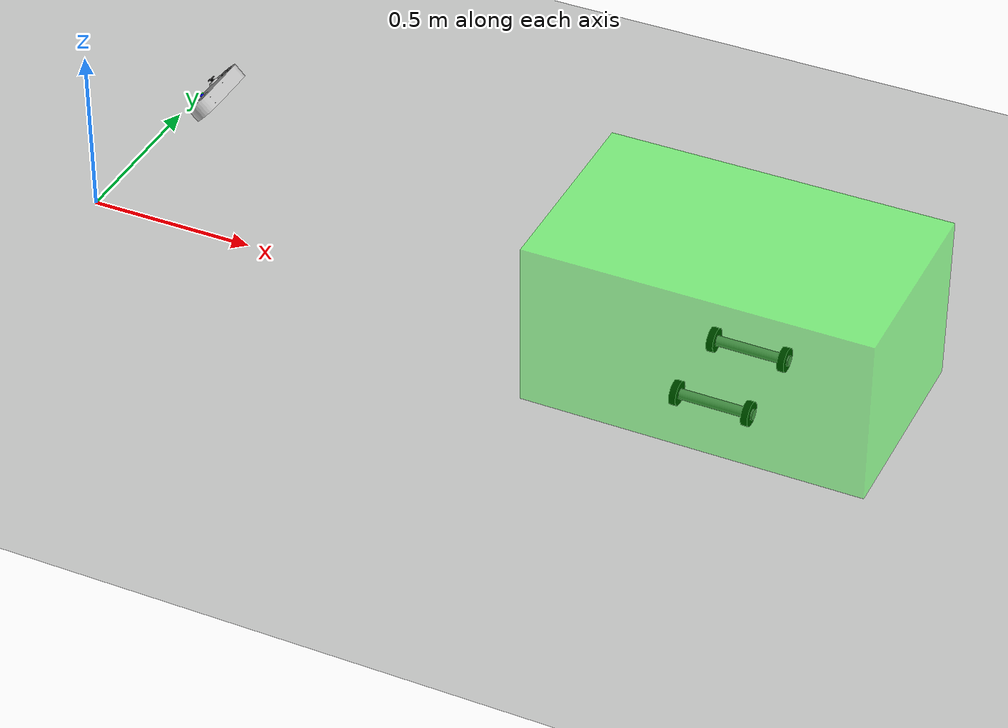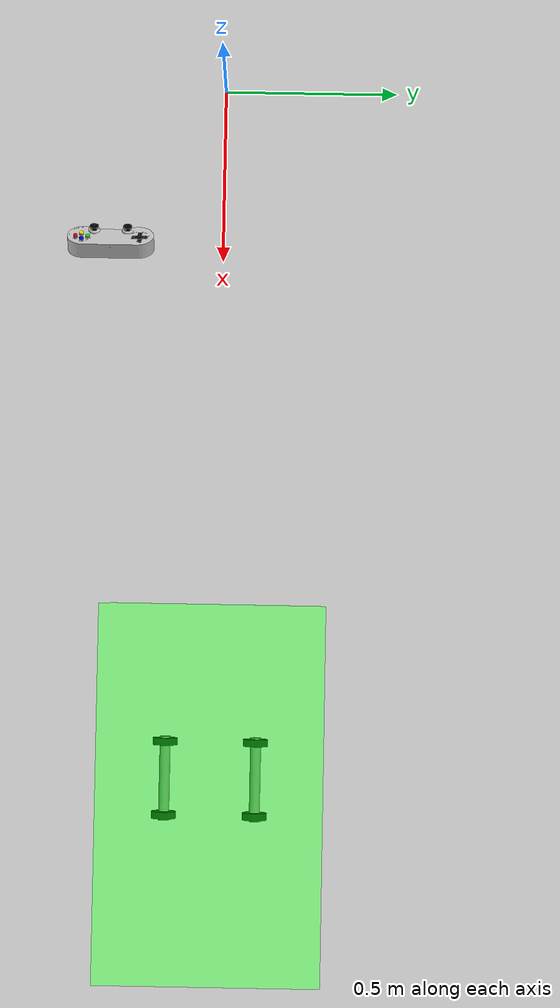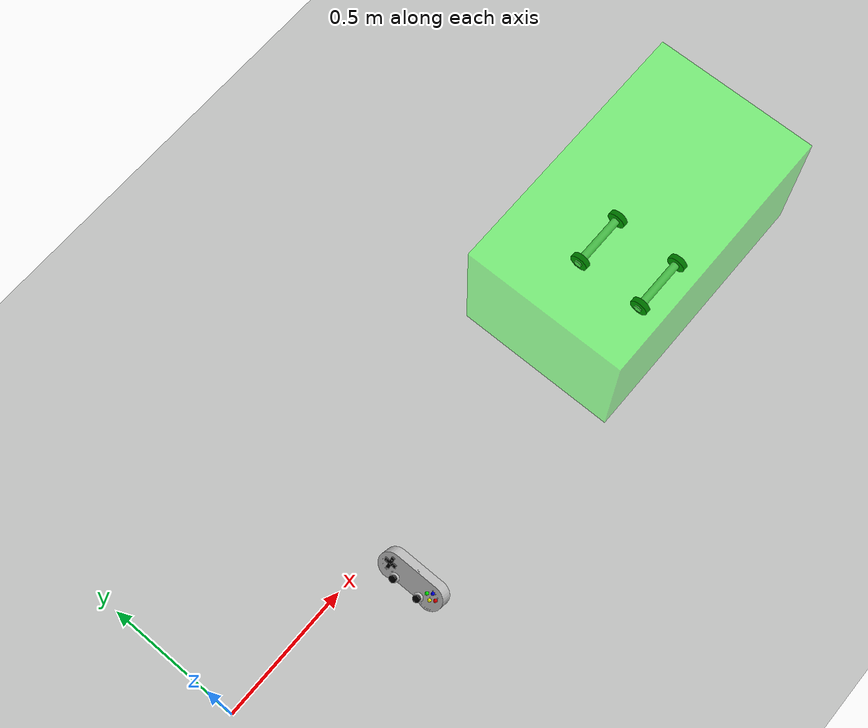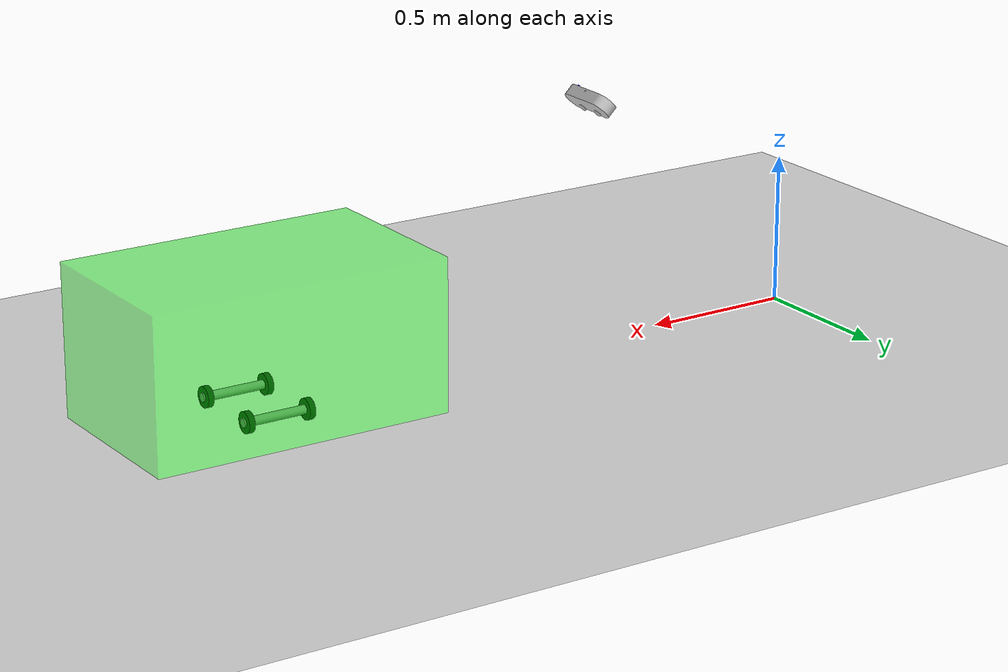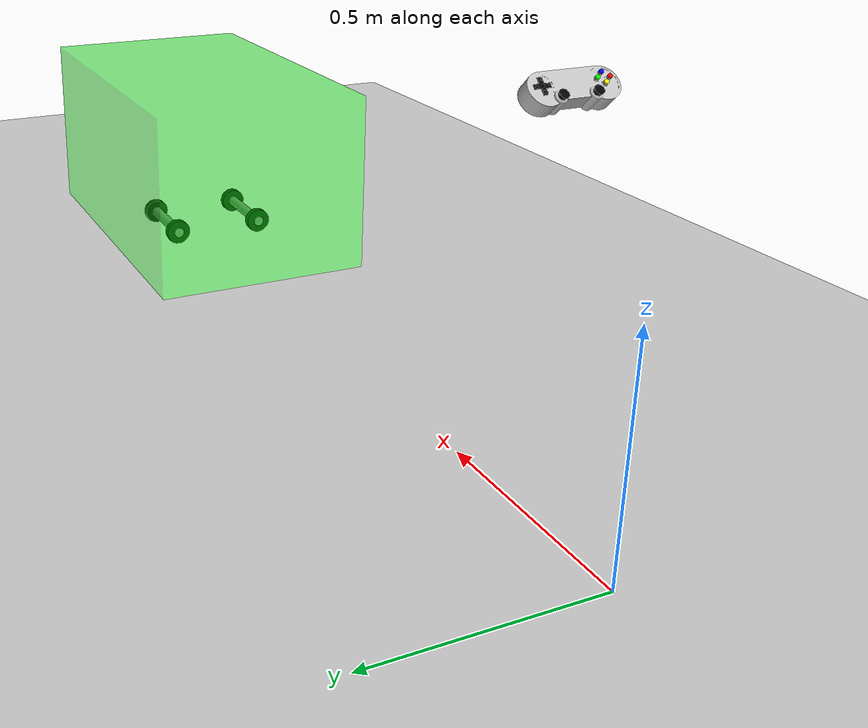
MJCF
<?xml version="1.0"?>
<mujoco>
    <compiler angle="radian"/>
    <option collision="predefined" timestep="0.002"/>
    <size njmax="1000" nconmax="400"/>

    <asset>
        <texture type="skybox" builtin="gradient" rgb1="1 1 1" rgb2="0.6 0.8 1" width="256" height="256"/>
        <!-- The referenced .stl files were self-created using OpenSCAD. -->
        <mesh name="chassis" file="assets/car/chassis.stl"/>
        <mesh name="steering_rack" file="assets/car/steering_rack.stl"/>
        <mesh name="steering_gear" file="assets/car/gear.stl"/>
        <mesh name="suspension_part1" file="assets/car/suspension_part1.stl"/>
        <mesh name="suspension_part2" file="assets/car/suspension_part2.stl"/>
        <material name="matcont_body" rgba="0.749 0.749 0.749 1" reflectance="0" shininess="0"/>
        <material name="matte_rubber" rgba="0 0 0 1" specular="0"/>
        <!-- The referenced .stl files were self-created using OpenSCAD. -->
        <mesh name="controller_body" file="assets/gamepad/controller_body.stl"/>
        <mesh name="d_pad" file="assets/gamepad/d_pad.stl"/>
        <mesh name="thumb_stick" file="assets/gamepad/thumb_stick.stl"/>
        <mesh name="button" file="assets/gamepad/game_action_button.stl"/>
    </asset>

    <worldbody>
        <light name="scene_directional_light" directional="true" castshadow="false" cutoff="4" exponent="20"
               diffuse="1 1 1" specular="0 0 0" pos=".9 .3 2.5"/>
        <body name="target" pos="2 0 0">
            <geom name="target" type="box" pos="0.0 0.0 0.0" size="0.5 0.3 0.5" rgba=" 0 .9 0 0.5" gap="100"
                  margin="-100"/>
            <joint name="target" limited="true" type="slide" stiffness="0" axis="0 -1 0" range="-2.5 2.5"/>
        </body>
        <body name="ground_body">
            <geom name="ground" type="plane" pos="0 0 0" size="10 10 1" rgba=" .25 .26 .25 1"/>
        </body>
        <body pos="2 0 0.065" name="car" euler="0 0 3.14">
            <camera name="car_third_person" fovy="80" pos="0 -0.5 0.4" euler="1 0 0"/>
            <geom type="mesh" mesh="chassis" pos="0 0.2 0" mass="1" rgba="1 0 0 0.4"/>
            <body pos="0 -0.12 -0.03" name="axis-back">
                <geom type="cylinder" mass="1" size="0.015 0.12" euler="1.57 1.57 0" rgba="0.6 0.6 0.6 1"/>
                <body pos="0.105 0 0" name="wheel1">
                    <geom name="wheel1" type="cylinder" mass="1" size="0.035 0.01" euler="1.57 1.57 0" rgba="0 0 0 1"
                          friction="3 1 0.5"/>
                </body>
                <body pos="-0.105 0 0" name="wheel2">
                    <geom name="wheel2" type="cylinder" mass="1" size="0.035 0.01" euler="1.57 1.57 0" rgba="0 0 0 1"
                          friction="3 1 0.5"/>
                </body>
                <joint type="hinge" name="axis-back:rot-x" axis="1 0 0" limited="false" stiffness="0" damping="0.1"/>
            </body>
            <body pos="0 0.14 -0.03" name="axis-front">
                <geom type="cylinder" mass="1" size="0.015 0.12" euler="1.57 1.57 0" rgba="0.6 0.6 0.6 1"/>
                <body pos="0.105 0 0" name="wheel3">
                    <geom name="wheel3" type="cylinder" mass="1" size="0.035 0.01" euler="1.57 1.57 0" rgba="0 0 0 1"
                          friction="3 1 0.5"/>
                </body>
                <body pos="-0.105 0 0" name="wheel4">
                    <geom name="wheel4" type="cylinder" mass="1" size="0.035 0.01" euler="1.57 1.57 0" rgba="0 0 0 1"
                          friction="3 1 0.5"/>
                </body>
                <joint type="hinge" name="axis-front:rot-x" axis="1 0 0" limited="false" stiffness="0" damping="0.1"/>
            </body>
            <joint damping="0" stiffness="0" armature="0" springdamper="0 0" name="car" limited="true" type="slide"
                   axis="0 1 0" range="-2.5 2.5"/>
        </body>

        <body name="gamepad" pos="0.6 -0.2 0.7" euler="0 -0.79 -1.57">
            <camera name="controller_front" pos="0 0.2 0.5" euler="-1 0 3.14"/>
            <camera name="controller_top" pos="0 0 0.5"/>
            <camera name="controller_back" pos="0 0 0.5" euler="1 0 0"/>
            <!-- This extra body is needed, because the buttons can not collide with "controller-base". -->
            <body name="sensor-wrapper" pos="0 0 0.025">
                <!-- The geometries are needed due to the way the "touch" sensors are working.
                They sense any collision within their sites volume. -->
                <site name="button-1-contact-point" type="sphere" size="0.0015" pos="0.1275 0.01 0.0175"/>
                <geom type="sphere" size="0.001" pos="0.1275 0.01 0.0175"/>
                <site name="button-2-contact-point" type="sphere" size="0.0015" pos="0.14375 -0.0025 0.0175"/>
                <geom type="sphere" size="0.001" pos="0.14375 -0.0025 0.0175"/>
                <site name="button-3-contact-point" type="sphere" size="0.0015" pos="0.14186332 0.022052262 0.0175"/>
                <geom type="sphere" size="0.001" pos="0.14186332 0.022052262 0.0175"/>
                <site name="button-4-contact-point" type="sphere" size="0.0015" pos="0.15811333 0.009552263 0.0175"/>
                <geom type="sphere" size="0.001" pos="0.15811333 0.009552263 0.0175"/>
                <site name="d_pad-contact-1" type="sphere" size="0.0015" pos="-0.004 -0.010624999 0.014374999"/>
                <geom type="sphere" size="0.001" pos="-0.004 -0.010624999 0.014374999"/>
                <site name="d_pad-contact-2" type="sphere" size="0.0015" pos="0.013374999 0.00675 0.014374999"/>
                <geom type="sphere" size="0.001" pos="0.013374999 0.00675 0.014374999"/>
                <site name="d_pad-contact-3" type="sphere" size="0.0015" pos="-0.004 0.024125 0.014374999"/>
                <geom type="sphere" size="0.001" pos="-0.004 0.024125 0.014374999"/>
                <site name="d_pad-contact-4" type="sphere" size="0.0015" pos="-0.021375 0.00675 0.014374999"/>
                <geom type="sphere" size="0.001" pos="-0.021375 0.00675 0.014374999"/>
            </body>

            <body name="controller-base" pos="0 0 0.025">
                <geom name="controller-base" type="mesh" mesh="controller_body" rgba="0.749 0.749 0.749 1"/>
            </body>
            <body name="d-pad" pos="-0.004 0.00675 0.0442">
                <geom name="d-pad" type="mesh" mesh="d_pad" mass="1" rgba="0 0 0 1"/>
                <joint type="hinge" name="d_pad:rot-x" axis="1 0 0" limited="true" range="-5 5" damping="10"
                       springref="0" stiffness="500"/>
                <joint type="hinge" name="d_pad:rot-y" axis="0 1 0" limited="true" range="-5 5" damping="10"
                       springref="0" stiffness="500"/>
            </body>
            <geom name="thumb-stick-1-virtual" pos="0.0275 -0.0225 0.059375" type="sphere" size="0.01" mass="0.0005"
                  rgba="1 0 0 0" contype="0" conaffinity="0"/>
            <body name="thumb-stick-1" pos="0.0275 -0.0225 0.039375">
                <geom name="thumb-stick-1" type="mesh" mesh="thumb_stick" mass="0.0005" rgba="0 0 0 1" friction="0.84"/>
                <joint type="hinge" name="thumb-stick-1:rot-x" axis="1 0 0" limited="true" range="-0.349 0.349"
                       damping="0.5" springref="0" stiffness="1"/>
            </body>
            <body name="thumb-stick-2" pos="0.112500004 -0.0225 0.039375">
                <geom name="thumb-stick-2" type="mesh" mesh="thumb_stick" mass="0.0005" rgba="0 0 0 1" friction="0.84"/>
                <joint type="hinge" name="thumb-stick-2:rot-x" axis="1 0 0" limited="true" range="-0.349 0.349"
                       damping="0.5" springref="0" stiffness="0.5"/>
            </body>
            <body name="control-buttons">
                <body name="button-1" pos="0.1275 0.01 0.05">
                    <geom name="button-1" type="mesh" mesh="button" mass="0.0005" rgba="0 1 0 1"/>
                    <joint axis="0 0 1" name="button-1:slide-z" type="slide" limited="true" range="-0.0045 0"
                           springref="0" stiffness="0.5" damping="0.5"/>
                </body>
                <body name="button-2" pos="0.14375 -0.0025 0.05">
                    <geom name="button-2" type="mesh" mesh="button" mass="0.0005" rgba="1 1 0 1"/>
                    <joint axis="0 0 1" name="button-2:slide-z" type="slide" limited="true" range="-0.0045 0"
                           springref="0" stiffness="0.5" damping="0.5"/>
                </body>
                <body name="button-3" pos="0.14186332 0.022052262 0.05">
                    <geom name="button-3" type="mesh" mesh="button" mass="0.0005" rgba="0 0 1 1"/>
                    <joint axis="0 0 1" name="button-3:slide-z" type="slide" limited="true" range="-0.0045 0"
                           springref="0" stiffness="0.5" damping="0.5"/>
                </body>
                <body name="button-4" pos="0.15811333 0.009552263 0.05">
                    <geom name="button-4" type="mesh" mesh="button" mass="0.0005" rgba="1 0 0 1"/>
                    <joint axis="0 0 1" name="button-4:slide-z" type="slide" limited="true" range="-0.0045 0"
                           springref="0" stiffness="0.5" damping="0.5"/>
                </body>
            </body>
        </body>
    </worldbody>

    <contact>
        <!-- Prevent individual controller parts from colliding. -->
        <exclude body1="car" body2="axis-back"></exclude>
        <exclude body1="axis-back" body2="wheel1"></exclude>
        <exclude body1="axis-back" body2="wheel2"></exclude>
        <exclude body1="car" body2="axis-front"></exclude>
        <exclude body1="axis-front" body2="wheel3"></exclude>
        <exclude body1="axis-front" body2="wheel4"></exclude>

        <!-- Prevent individual controller parts from colliding. -->
        <exclude body1="button-1" body2="controller-base"></exclude>
        <exclude body1="button-2" body2="controller-base"></exclude>
        <exclude body1="button-3" body2="controller-base"></exclude>
        <exclude body1="button-4" body2="controller-base"></exclude>

        <exclude body1="thumb-stick-1" body2="controller-base"></exclude>
        <exclude body1="thumb-stick-2" body2="controller-base"></exclude>
        <exclude body1="d-pad" body2="controller-base"></exclude>

        <pair geom1="wheel1" geom2="target" margin="100" gap="200"/>
        <pair geom1="wheel2" geom2="target" margin="100" gap="200"/>
        <pair geom1="wheel3" geom2="target" margin="100" gap="200"/>
        <pair geom1="wheel4" geom2="target" margin="100" gap="200"/>

        <pair geom1="wheel1" geom2="ground"/>
        <pair geom1="wheel2" geom2="ground"/>
        <pair geom1="wheel3" geom2="ground"/>
        <pair geom1="wheel4" geom2="ground"/>
    </contact>

</mujoco>
